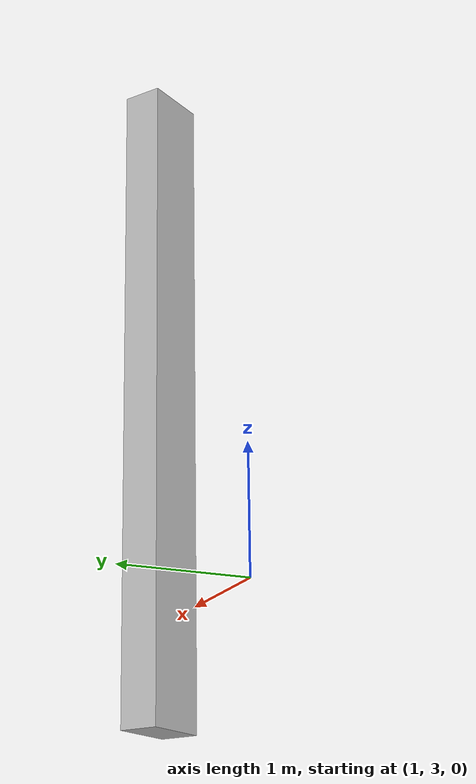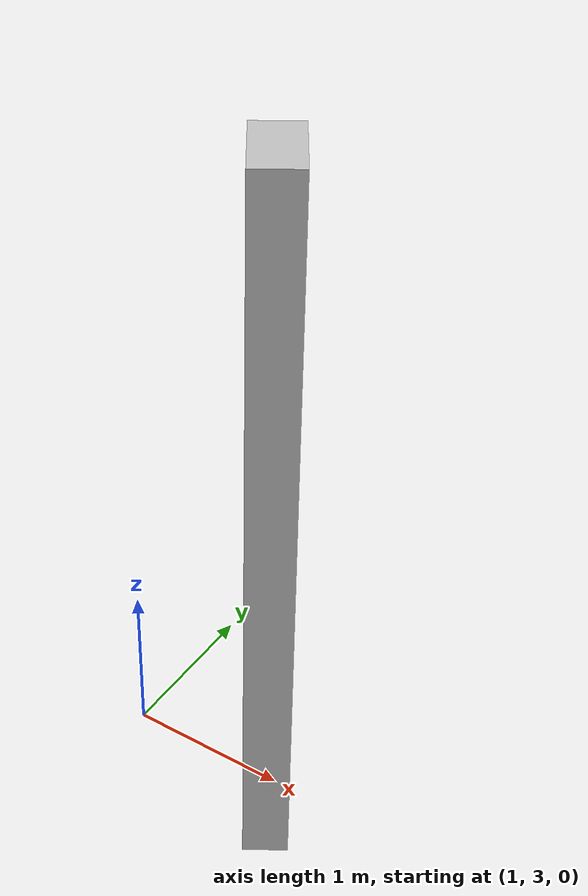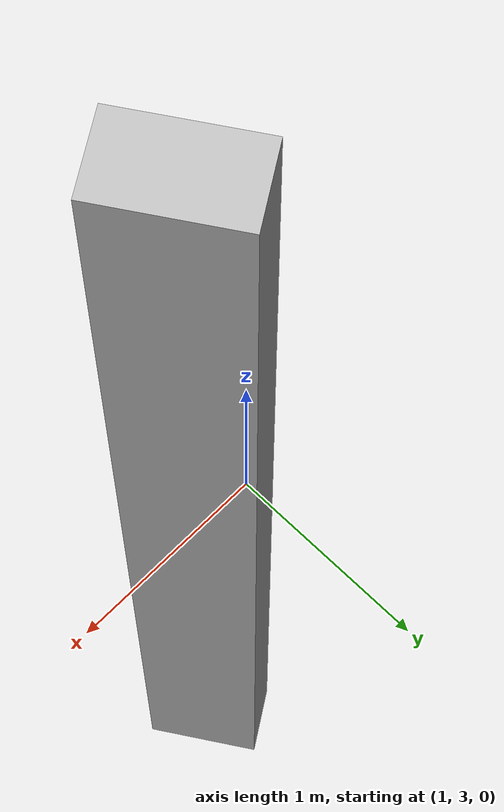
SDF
<?xml version='1.0'?>
<sdf version='1.9'>
  <model name='cbrn_robot'>
    <pose>0.4 1.92 0.75 0 0 -0.5</pose>

    <!-- baza robotului -->
    <link name='base_link'>
      <pose>0.4 1.92 0.75 0 0 -0.5</pose>

      <inertial>
        <mass>5.0</mass>
        <inertia>
          <ixx>0.1</ixx>
          <iyy>0.1</iyy>
          <izz>0.1</izz>
        </inertia>
      </inertial>

      <visual name='base_visual'>
        <geometry>
          <box>
          <!-- X (length), Y (width), 0.1 (height) -->
            <size>0.5 0.3 5</size>
          </box>
        </geometry>
      </visual>

      <collision name='base_collision'>
        <geometry>
          <box>
            <size>0.5 0.3 1.5</size>
          </box>
        </geometry>
      </collision>
    </link>

    <!-- Camera integrată în robot -->
    <link name="camera_link">
      <pose>0.5 0 1.2 0 1.17 3.14159</pose>

      <sensor name="rgb_camera" type="camera">
        <topic>/camera</topic>

        <camera>
          <image>
            <width>640</width>
            <height>480</height>
            <format>R8G8B8</format>
          </image>
          <clip>
            <near>0.1</near>
            <far>10.0</far>
          </clip>
        </camera>

        <always_on>1</always_on>
        <update_rate>30</update_rate>

        <plugin name="gz::sim::systems::Sensors" filename="gz-sim8-sensors-system">
          <update_rate>30</update_rate>
        </plugin>
      </sensor>
    </link>
    <joint name="camera_joint" type="fixed">
      <parent>base_link</parent>
      <child>camera_link</child>
    </joint>

  </model>
</sdf>
